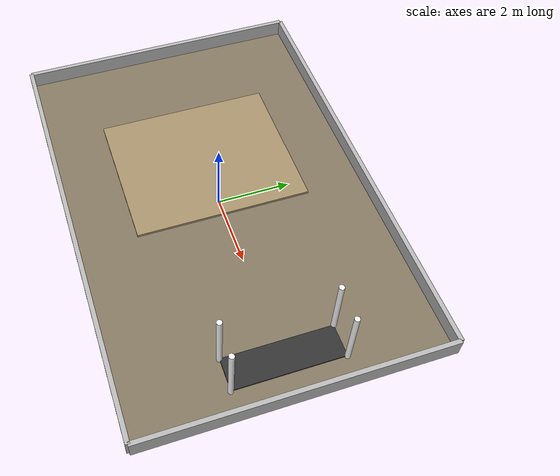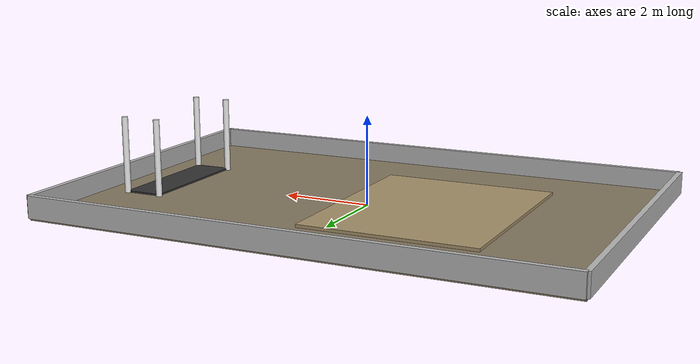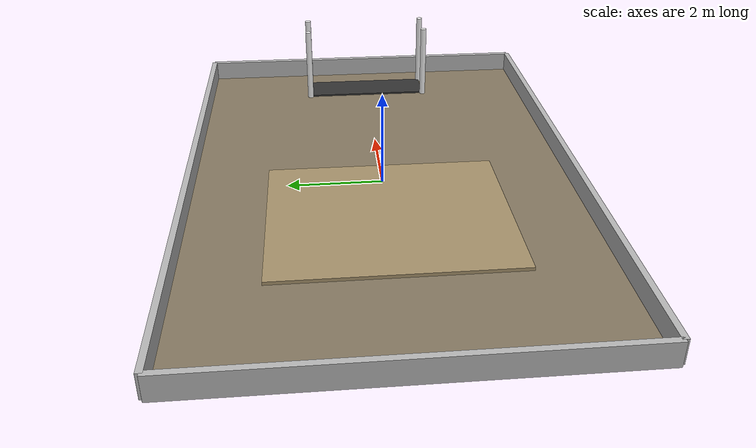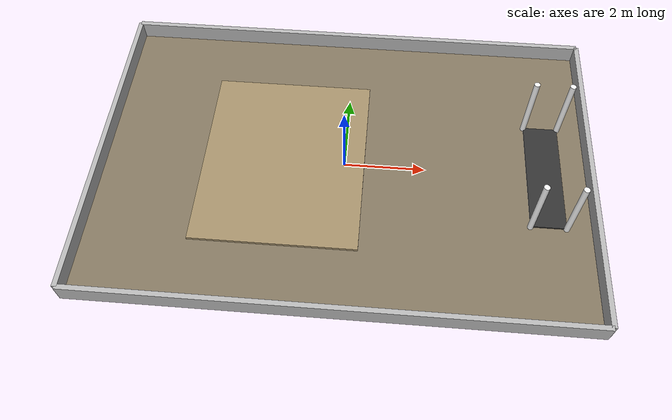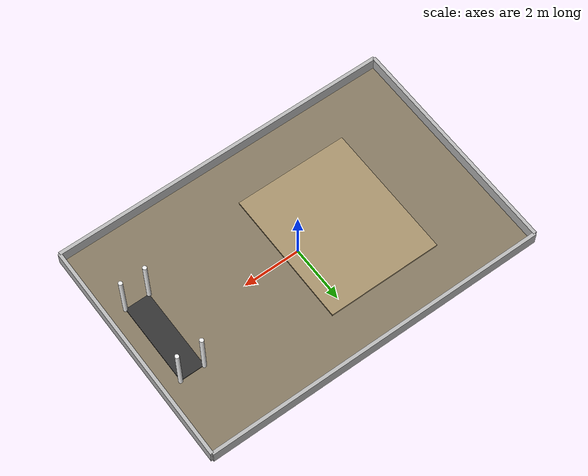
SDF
<?xml version="1.0"?>
<sdf version="1.6">
  <world name="lunabotics_arena">
    <include><uri>model://sun</uri></include>
    <physics type="ode"><gravity>0 0 -9.81</gravity><real_time_update_rate>1000</real_time_update_rate></physics>
    <scene><ambient>0.55 0.55 0.55 1</ambient><background>0.06 0.06 0.08 1</background></scene>
    <model name="arena_floor"><static>true</static><link name="floor"><collision name="c"><geometry><box><size>12 8 0.10</size></box></geometry></collision><visual name="v"><geometry><box><size>12 8 0.10</size></box></geometry><material><ambient>0.42 0.38 0.31 1</ambient><diffuse>0.52 0.47 0.38 1</diffuse></material></visual></link></model>
    <!-- Low boundary walls -->
    <model name="north_wall"><static>true</static><pose>0 4 0.25 0 0 0</pose><link name="l"><collision name="c"><geometry><box><size>12 0.12 0.5</size></box></geometry></collision><visual name="v"><geometry><box><size>12 0.12 0.5</size></box></geometry></visual></link></model>
    <model name="south_wall"><static>true</static><pose>0 -4 0.25 0 0 0</pose><link name="l"><collision name="c"><geometry><box><size>12 0.12 0.5</size></box></geometry></collision><visual name="v"><geometry><box><size>12 0.12 0.5</size></box></geometry></visual></link></model>
    <model name="east_wall"><static>true</static><pose>6 0 0.25 0 0 0</pose><link name="l"><collision name="c"><geometry><box><size>0.12 8 0.5</size></box></geometry></collision><visual name="v"><geometry><box><size>0.12 8 0.5</size></box></geometry></visual></link></model>
    <model name="west_wall"><static>true</static><pose>-6 0 0.25 0 0 0</pose><link name="l"><collision name="c"><geometry><box><size>0.12 8 0.5</size></box></geometry></collision><visual name="v"><geometry><box><size>0.12 8 0.5</size></box></geometry></visual></link></model>
    <!-- Excavation region -->
    <model name="excavation_zone"><static>true</static><pose>-1.5 0 0.08 0 0 0</pose><link name="l"><visual name="v"><geometry><box><size>4.0 4.8 0.08</size></box></geometry><material><ambient>0.56 0.48 0.35 1</ambient><diffuse>0.65 0.57 0.42 1</diffuse></material></visual><collision name="c"><geometry><box><size>4.0 4.8 0.08</size></box></geometry></collision></link></model>
    <!-- Four disposal goal posts; arranged as a rectangular bay. -->
    <model name="goal_post_4.5_-1.45"><static>true</static><pose>4.5 -1.45 0.9 0 0 0</pose><link name="post"><collision name="c"><geometry><cylinder><radius>0.07</radius><length>1.8</length></cylinder></geometry></collision><visual name="v"><geometry><cylinder><radius>0.07</radius><length>1.8</length></cylinder></geometry><material><ambient>0.85 0.85 0.85 1</ambient><diffuse>0.95 0.95 0.95 1</diffuse></material></visual></link></model>
    <model name="goal_post_4.5_1.45"><static>true</static><pose>4.5 1.45 0.9 0 0 0</pose><link name="post"><collision name="c"><geometry><cylinder><radius>0.07</radius><length>1.8</length></cylinder></geometry></collision><visual name="v"><geometry><cylinder><radius>0.07</radius><length>1.8</length></cylinder></geometry><material><ambient>0.85 0.85 0.85 1</ambient><diffuse>0.95 0.95 0.95 1</diffuse></material></visual></link></model>
    <model name="goal_post_5.35_-1.45"><static>true</static><pose>5.35 -1.45 0.9 0 0 0</pose><link name="post"><collision name="c"><geometry><cylinder><radius>0.07</radius><length>1.8</length></cylinder></geometry></collision><visual name="v"><geometry><cylinder><radius>0.07</radius><length>1.8</length></cylinder></geometry><material><ambient>0.85 0.85 0.85 1</ambient><diffuse>0.95 0.95 0.95 1</diffuse></material></visual></link></model>
    <model name="goal_post_5.35_1.45"><static>true</static><pose>5.35 1.45 0.9 0 0 0</pose><link name="post"><collision name="c"><geometry><cylinder><radius>0.07</radius><length>1.8</length></cylinder></geometry></collision><visual name="v"><geometry><cylinder><radius>0.07</radius><length>1.8</length></cylinder></geometry><material><ambient>0.85 0.85 0.85 1</ambient><diffuse>0.95 0.95 0.95 1</diffuse></material></visual></link></model>
    <model name="dump_bay_floor"><static>true</static><pose>4.925 0 0.06 0 0 0</pose><link name="l"><visual name="v"><geometry><box><size>0.85 2.9 0.06</size></box></geometry><material><ambient>0.2 0.2 0.2 1</ambient></material></visual></link></model>
  </world>
</sdf>
